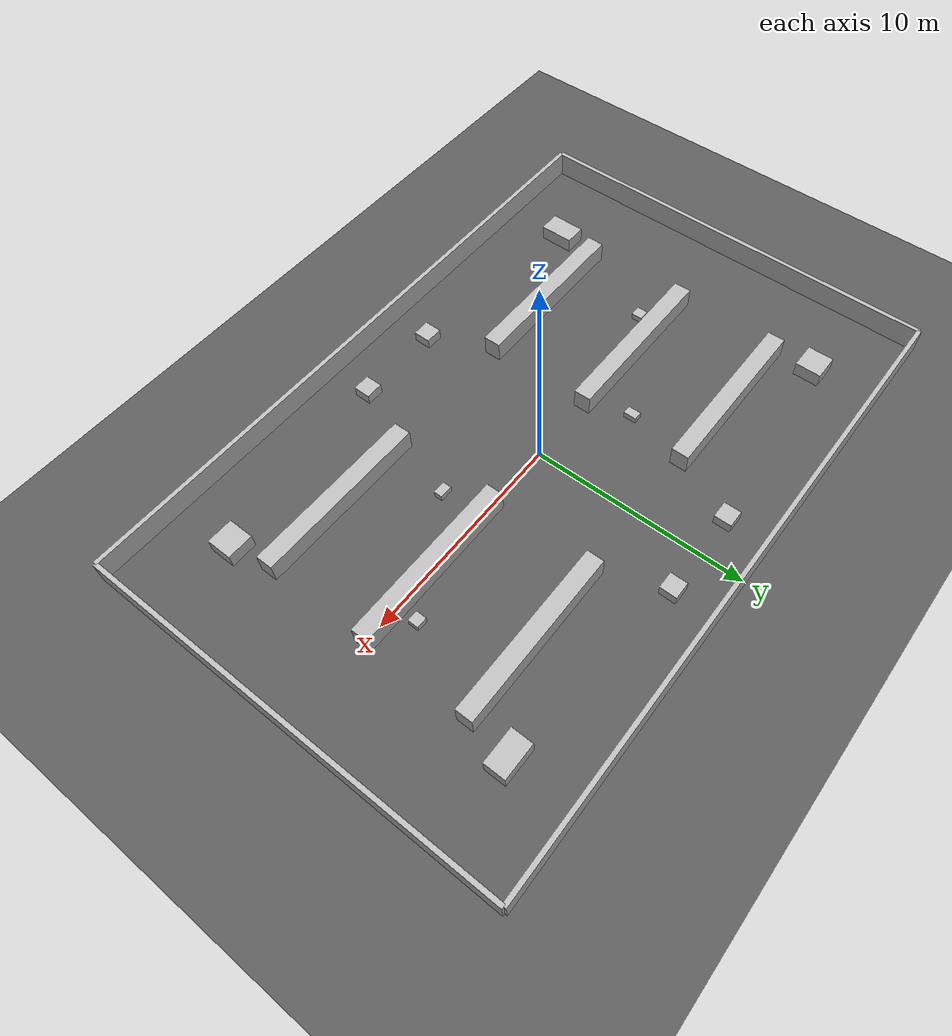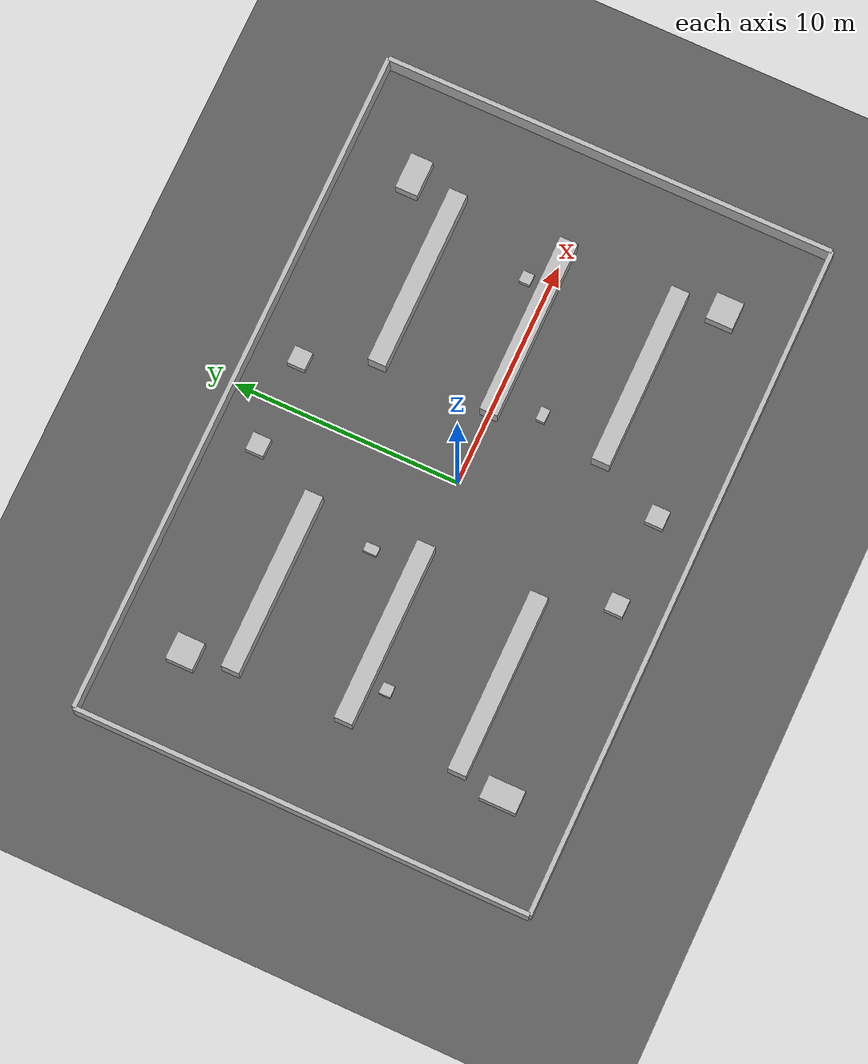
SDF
<?xml version="1.0" ?>
<sdf version="1.7">
  <world name="arena_large">

    <!-- Self-contained ground + light (no Fuel download needed) -->
    <model name="ground_plane">
      <static>true</static>
      <link name="link">
        <collision name="collision">
          <geometry>
            <plane>
              <normal>0 0 1</normal>
              <size>200 200</size>
            </plane>
          </geometry>
        </collision>
        <visual name="visual">
          <geometry>
            <plane>
              <normal>0 0 1</normal>
              <size>200 200</size>
            </plane>
          </geometry>
          <material>
            <ambient>0.25 0.25 0.25 1</ambient>
            <diffuse>0.35 0.35 0.35 1</diffuse>
            <specular>0.05 0.05 0.05 1</specular>
          </material>
        </visual>
      </link>
    </model>

    <light name="sun" type="directional">
      <cast_shadows>true</cast_shadows>
      <pose>0 0 10 0 0 0</pose>
      <diffuse>1 1 1 1</diffuse>
      <specular>0.2 0.2 0.2 1</specular>
      <direction>-0.5 0.5 -1</direction>
    </light>

    <!-- ===== Outer walls (30m x 20m arena) ===== -->
    <!-- Arena centered at (0,0). Wall thickness 0.2m, height 1.2m. -->
    <model name="wall_north">
      <static>true</static>
      <pose>0 10 0.6 0 0 0</pose>
      <link name="link">
        <collision name="col">
          <geometry><box><size>30 0.2 1.2</size></box></geometry>
        </collision>
        <visual name="vis">
          <geometry><box><size>30 0.2 1.2</size></box></geometry>
        </visual>
      </link>
    </model>

    <model name="wall_south">
      <static>true</static>
      <pose>0 -10 0.6 0 0 0</pose>
      <link name="link">
        <collision name="col">
          <geometry><box><size>30 0.2 1.2</size></box></geometry>
        </collision>
        <visual name="vis">
          <geometry><box><size>30 0.2 1.2</size></box></geometry>
        </visual>
      </link>
    </model>

    <model name="wall_east">
      <static>true</static>
      <pose>15 0 0.6 0 0 0</pose>
      <link name="link">
        <collision name="col">
          <geometry><box><size>0.2 20 1.2</size></box></geometry>
        </collision>
        <visual name="vis">
          <geometry><box><size>0.2 20 1.2</size></box></geometry>
        </visual>
      </link>
    </model>

    <model name="wall_west">
      <static>true</static>
      <pose>-15 0 0.6 0 0 0</pose>
      <link name="link">
        <collision name="col">
          <geometry><box><size>0.2 20 1.2</size></box></geometry>
        </collision>
        <visual name="vis">
          <geometry><box><size>0.2 20 1.2</size></box></geometry>
        </visual>
      </link>
    </model>

    <!-- ===== "Warehouse shelves" (long obstacles with wide aisles) ===== -->
    <!-- 8m x 0.8m shelves, height 1.0m -->
    <model name="shelf_1">
      <static>true</static>
      <pose>-7 5 0.5 0 0 0</pose>
      <link name="link">
        <collision name="col"><geometry><box><size>8 0.8 1.0</size></box></geometry></collision>
        <visual name="vis"><geometry><box><size>8 0.8 1.0</size></box></geometry></visual>
      </link>
    </model>
    <model name="shelf_2">
      <static>true</static>
      <pose>7 5 0.5 0 0 0</pose>
      <link name="link">
        <collision name="col"><geometry><box><size>8 0.8 1.0</size></box></geometry></collision>
        <visual name="vis"><geometry><box><size>8 0.8 1.0</size></box></geometry></visual>
      </link>
    </model>
    <model name="shelf_3">
      <static>true</static>
      <pose>-7 0 0.5 0 0 0</pose>
      <link name="link">
        <collision name="col"><geometry><box><size>8 0.8 1.0</size></box></geometry></collision>
        <visual name="vis"><geometry><box><size>8 0.8 1.0</size></box></geometry></visual>
      </link>
    </model>
    <model name="shelf_4">
      <static>true</static>
      <pose>7 0 0.5 0 0 0</pose>
      <link name="link">
        <collision name="col"><geometry><box><size>8 0.8 1.0</size></box></geometry></collision>
        <visual name="vis"><geometry><box><size>8 0.8 1.0</size></box></geometry></visual>
      </link>
    </model>
    <model name="shelf_5">
      <static>true</static>
      <pose>-7 -5 0.5 0 0 0</pose>
      <link name="link">
        <collision name="col"><geometry><box><size>8 0.8 1.0</size></box></geometry></collision>
        <visual name="vis"><geometry><box><size>8 0.8 1.0</size></box></geometry></visual>
      </link>
    </model>
    <model name="shelf_6">
      <static>true</static>
      <pose>7 -5 0.5 0 0 0</pose>
      <link name="link">
        <collision name="col"><geometry><box><size>8 0.8 1.0</size></box></geometry></collision>
        <visual name="vis"><geometry><box><size>8 0.8 1.0</size></box></geometry></visual>
      </link>
    </model>

    <!-- ===== Extra obstacles (boxes of varying size) ===== -->
    <model name="box_a">
      <static>true</static>
      <pose>-11 7 0.35 0 0 0</pose>
      <link name="link">
        <collision name="col"><geometry><box><size>1.2 1.2 0.7</size></box></geometry></collision>
        <visual name="vis"><geometry><box><size>1.2 1.2 0.7</size></box></geometry></visual>
      </link>
    </model>
    <model name="box_b">
      <static>true</static>
      <pose>-11 -7 0.35 0 0 0</pose>
      <link name="link">
        <collision name="col"><geometry><box><size>1.0 1.6 0.7</size></box></geometry></collision>
        <visual name="vis"><geometry><box><size>1.0 1.6 0.7</size></box></geometry></visual>
      </link>
    </model>
    <model name="box_c">
      <static>true</static>
      <pose>11 7 0.35 0 0 0</pose>
      <link name="link">
        <collision name="col"><geometry><box><size>1.6 1.0 0.7</size></box></geometry></collision>
        <visual name="vis"><geometry><box><size>1.6 1.0 0.7</size></box></geometry></visual>
      </link>
    </model>
    <model name="box_d">
      <static>true</static>
      <pose>11 -7 0.35 0 0 0</pose>
      <link name="link">
        <collision name="col"><geometry><box><size>1.2 1.2 0.7</size></box></geometry></collision>
        <visual name="vis"><geometry><box><size>1.2 1.2 0.7</size></box></geometry></visual>
      </link>
    </model>

    <model name="crate_1">
      <static>true</static>
      <pose>-2 8 0.25 0 0 0</pose>
      <link name="link">
        <collision name="col"><geometry><box><size>0.8 0.8 0.5</size></box></geometry></collision>
        <visual name="vis"><geometry><box><size>0.8 0.8 0.5</size></box></geometry></visual>
      </link>
    </model>
    <model name="crate_2">
      <static>true</static>
      <pose>2 8 0.25 0 0 0</pose>
      <link name="link">
        <collision name="col"><geometry><box><size>0.8 0.8 0.5</size></box></geometry></collision>
        <visual name="vis"><geometry><box><size>0.8 0.8 0.5</size></box></geometry></visual>
      </link>
    </model>
    <model name="crate_3">
      <static>true</static>
      <pose>-2 -8 0.25 0 0 0</pose>
      <link name="link">
        <collision name="col"><geometry><box><size>0.8 0.8 0.5</size></box></geometry></collision>
        <visual name="vis"><geometry><box><size>0.8 0.8 0.5</size></box></geometry></visual>
      </link>
    </model>
    <model name="crate_4">
      <static>true</static>
      <pose>2 -8 0.25 0 0 0</pose>
      <link name="link">
        <collision name="col"><geometry><box><size>0.8 0.8 0.5</size></box></geometry></collision>
        <visual name="vis"><geometry><box><size>0.8 0.8 0.5</size></box></geometry></visual>
      </link>
    </model>

    <!-- Small "debris" boxes (forces tighter maneuvers but still navigable) -->
    <model name="debris_1">
      <static>true</static>
      <pose>-4 2 0.15 0 0 0</pose>
      <link name="link">
        <collision name="col"><geometry><box><size>0.4 0.6 0.3</size></box></geometry></collision>
        <visual name="vis"><geometry><box><size>0.4 0.6 0.3</size></box></geometry></visual>
      </link>
    </model>
    <model name="debris_2">
      <static>true</static>
      <pose>4 -2 0.15 0 0 0</pose>
      <link name="link">
        <collision name="col"><geometry><box><size>0.6 0.4 0.3</size></box></geometry></collision>
        <visual name="vis"><geometry><box><size>0.6 0.4 0.3</size></box></geometry></visual>
      </link>
    </model>
    <model name="debris_3">
      <static>true</static>
      <pose>-9 -1 0.15 0 0 0</pose>
      <link name="link">
        <collision name="col"><geometry><box><size>0.5 0.5 0.3</size></box></geometry></collision>
        <visual name="vis"><geometry><box><size>0.5 0.5 0.3</size></box></geometry></visual>
      </link>
    </model>
    <model name="debris_4">
      <static>true</static>
      <pose>9 1 0.15 0 0 0</pose>
      <link name="link">
        <collision name="col"><geometry><box><size>0.5 0.5 0.3</size></box></geometry></collision>
        <visual name="vis"><geometry><box><size>0.5 0.5 0.3</size></box></geometry></visual>
      </link>
    </model>

  </world>
</sdf>
